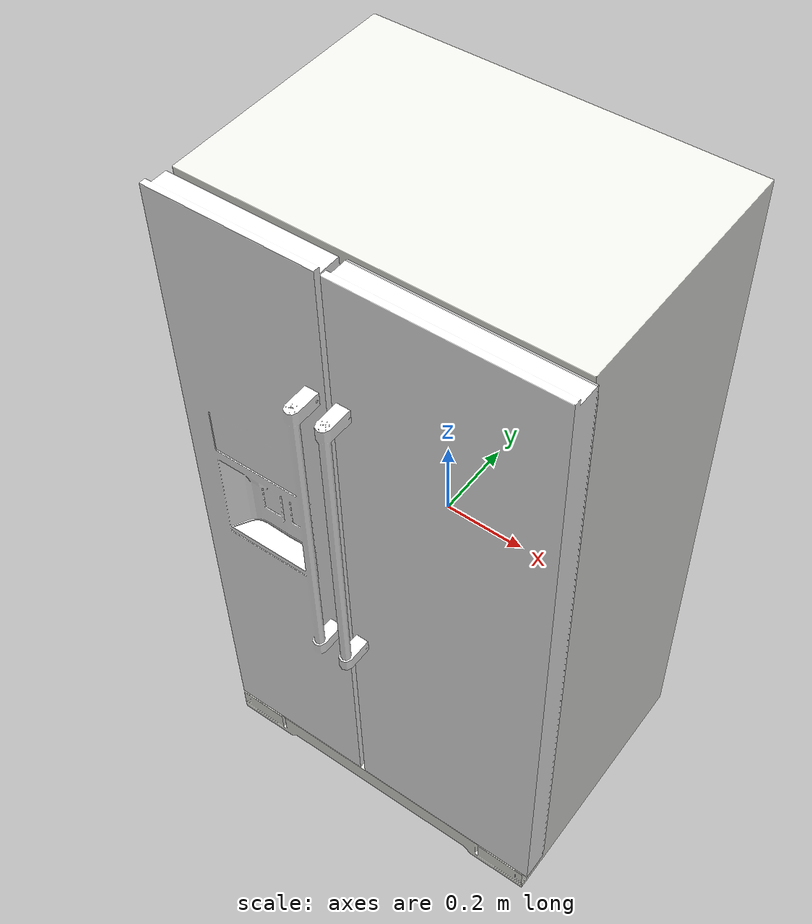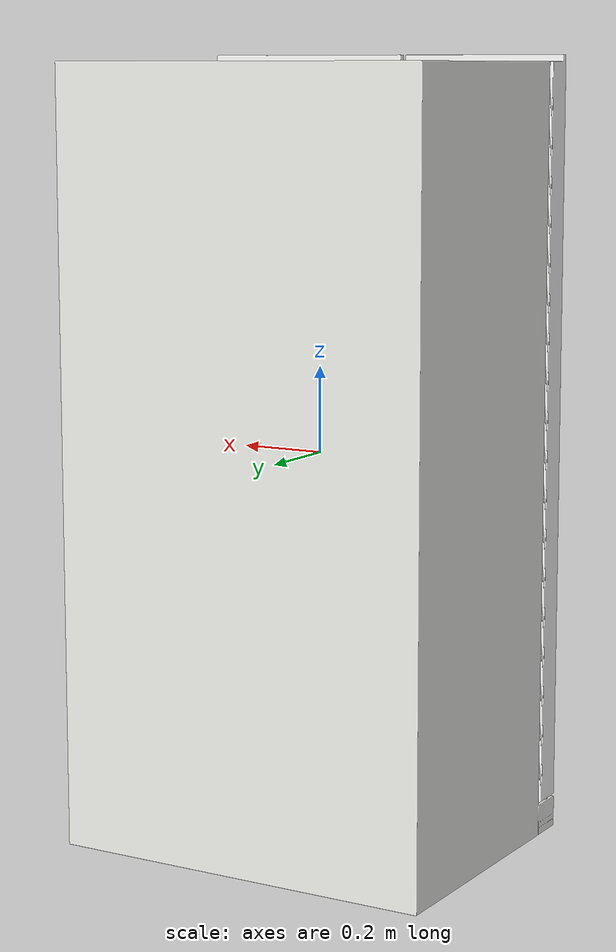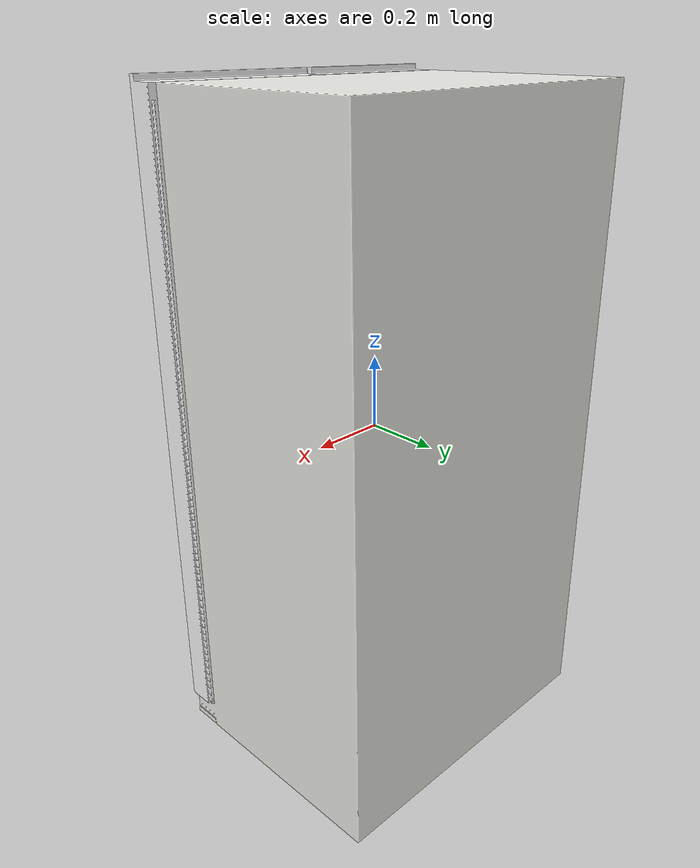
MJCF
<mujoco>
  <asset>
    <mesh file="13/RefrigeratorMain.stl"      name="main"/>
    <mesh file="13/RefrigeratorDoor.stl"     name="door0"/>
    <mesh file="13/RefrigeratorDoor0001.stl" name="door1"/>
    <mesh file="13/RefrigeratorDrawer.stl"      name="draw0"/>
    <mesh file="13/RefrigeratorDrawer0001.stl" name="draw1"/>
    <mesh file="13/RefrigeratorDrawer0002.stl" name="draw2"/>
    <mesh file="13/RefrigeratorDrawer0003.stl" name="draw3"/>
    <mesh file="13/RefrigeratorDrawer0004.stl" name="draw4"/>
  </asset>

  <worldbody>
    <body>
      <!-- 外壳：浅白色塑料 -->
      <geom type="mesh" mesh="main"   rgba="0.92 0.92 0.90 1"/>
      <!-- 门：浅白色塑料 -->
      <geom type="mesh" mesh="door0"  rgba="0.98 0.98 0.98 1"/>
      <geom type="mesh" mesh="door1"  rgba="0.98 0.98 0.98 1"/>
      <!-- 抽屉：透明塑料 -->
      <geom type="mesh" mesh="draw0"  rgba="0.95 0.95 0.95 0.6"/>
      <geom type="mesh" mesh="draw1"  rgba="0.95 0.95 0.95 0.6"/>
      <geom type="mesh" mesh="draw2"  rgba="0.95 0.95 0.95 0.6"/>
      <geom type="mesh" mesh="draw3"  rgba="0.95 0.95 0.95 0.6"/>
      <geom type="mesh" mesh="draw4"  rgba="0.95 0.95 0.95 0.6"/>
    </body>
  </worldbody>
</mujoco>
